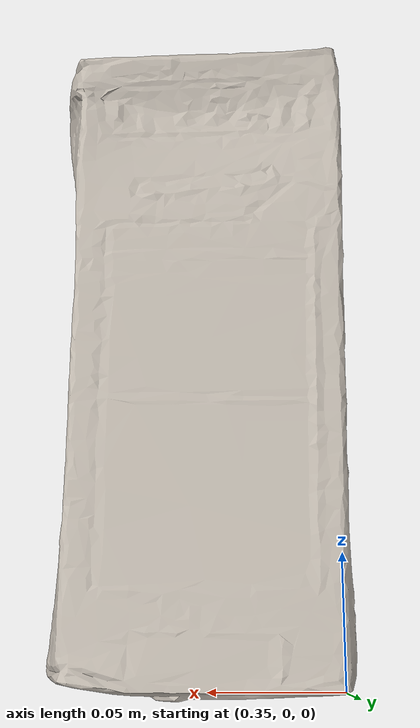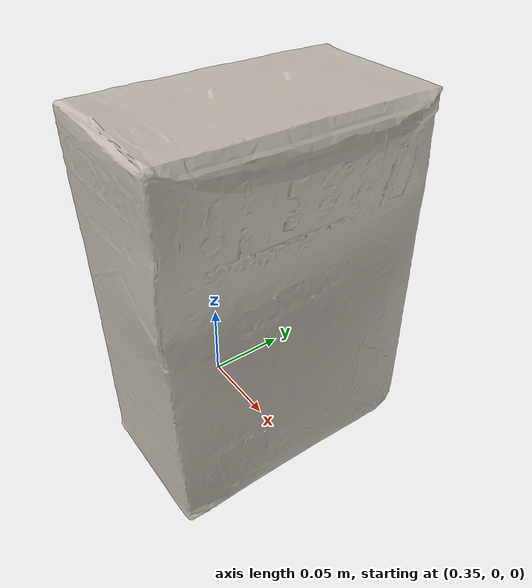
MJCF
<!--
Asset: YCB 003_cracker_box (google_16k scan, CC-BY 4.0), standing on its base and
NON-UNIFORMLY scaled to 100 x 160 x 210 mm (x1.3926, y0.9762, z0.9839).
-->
<?xml version="1.0"?>
<mujoco model="block">
  <compiler meshdir="assets" texturedir="assets"/>

  <asset>
    <texture name="block_tex" type="2d" file="block_tex.png"/>
    <material name="block_mat" texture="block_tex" specular="0.15" shininess="0.15"/>
    <mesh name="block_vis" file="block_vis.obj"/>
  </asset>

  <worldbody>
    <body name="block" pos="0.4 0 0.105">
      <freejoint name="block_joint"/>
      <inertial pos="-0.00102 0.00025 -0.00045" quat="0.003477 0.710895 0.001747 -0.703288" mass="0.55000" diaginertia="1.515e-03 2.364e-03 3.071e-03"/>
      <geom name="block_visual" type="mesh" mesh="block_vis" material="block_mat" contype="0" conaffinity="0" group="2" mass="0"/>
      <geom name="block_geom" type="box" pos="0 0 0" size="0.0500 0.0800 0.1050" group="3" rgba="0.5 0.5 0.5 0.3" condim="3" friction="0.8 0.03 0.003" contype="1" conaffinity="1" solref="0.01 1" mass="0"/>
      <site name="object_site" pos="0 0 0" size="0.01" rgba="1 0 0 1"/>
    </body>
  </worldbody>
</mujoco>
